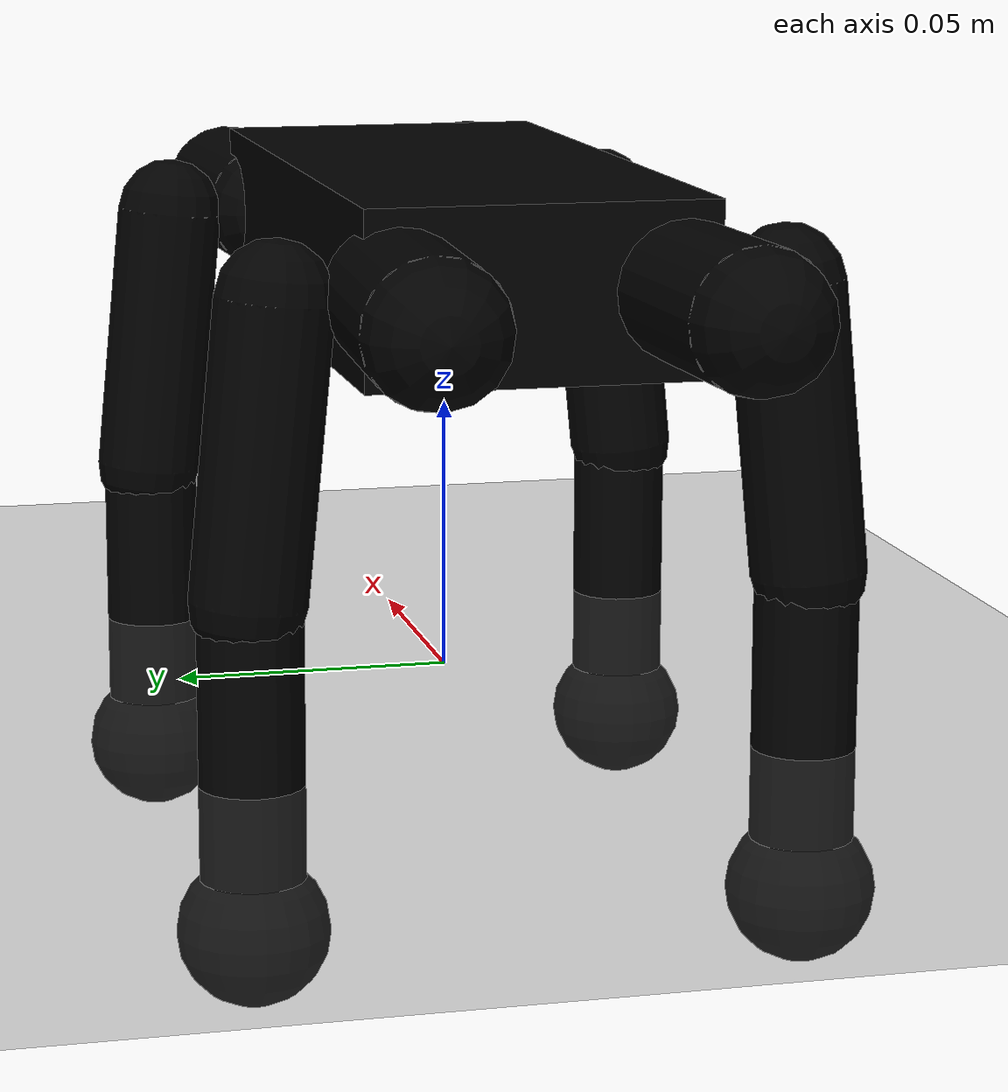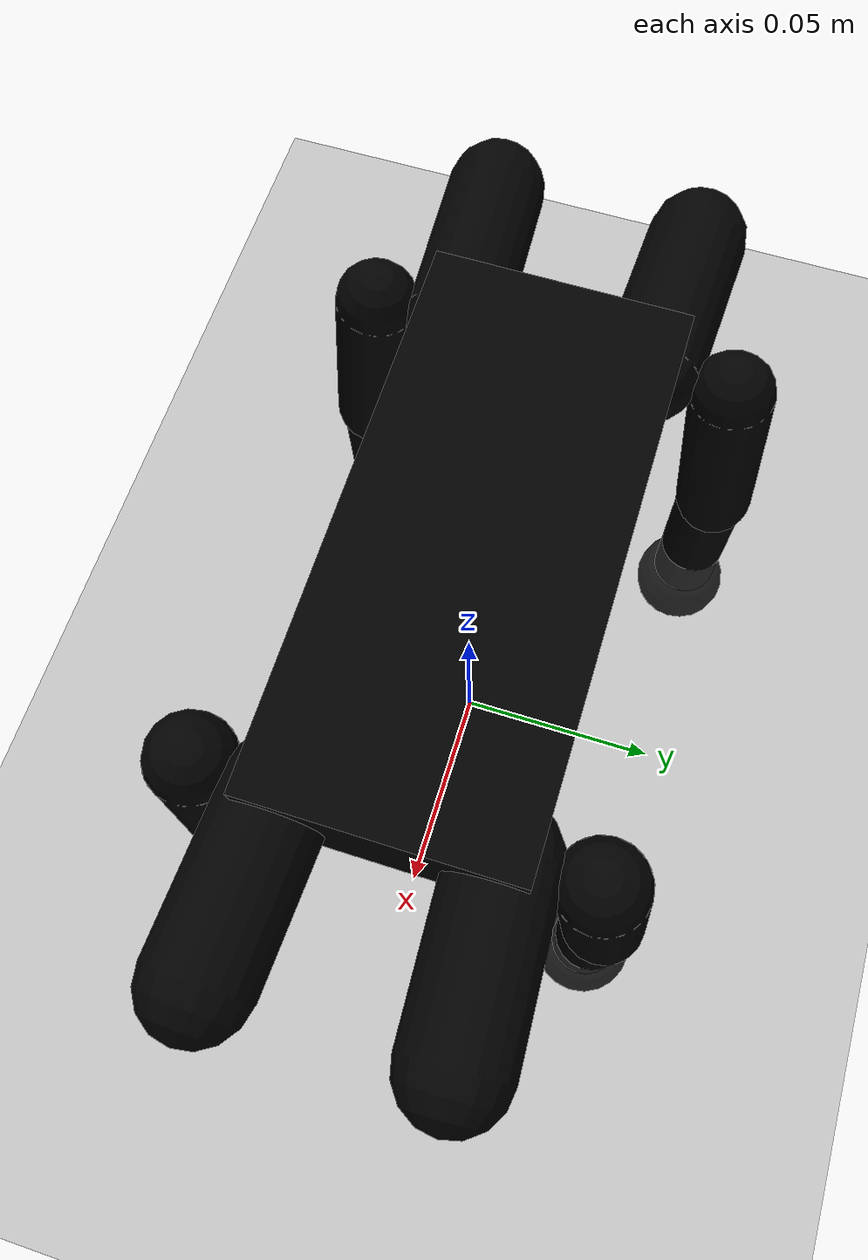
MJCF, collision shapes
<mujoco model="mini_pupper_2">

  <!-- COMPILER                                                      -->
  <compiler angle="radian" meshdir="meshes" autolimits="true" balanceinertia="true"/>

  <!-- OPTIONS                                                       -->
  <!-- MJX-compatible: pyramidal friction, Newton solver            -->
  <!-- timestep=0.004 matches Colab physics_dt                      -->
  <option timestep="0.004" iterations="2" ls_iterations="6"
          solver="Newton" cone="pyramidal" jacobian="dense"/>

  <!-- CUSTOM: MJX contact options                                   -->
  <!-- Required by pupperv3_mjx utils.set_mjx_custom_options()      -->
  <!-- Values overwritten at runtime by Colab config                 -->
  <custom>
    <numeric name="max_contact_points" data="8"/>
    <numeric name="max_geom_pairs" data="8"/>
  </custom>

  <!-- ASSETS                                                        -->
  <asset>
    <!-- Structural leg meshes -->
    <mesh name="base_link"  file="base_link.stl"/>
    <mesh name="lf1"        file="lf1.stl"/>
    <mesh name="lf2"        file="lf2.stl"/>
    <mesh name="lf3"        file="lf3.stl"/>
    <mesh name="rf1"        file="rf1.stl"/>
    <mesh name="rf2"        file="rf2.stl"/>
    <mesh name="rf3"        file="rf3.stl"/>
    <mesh name="lb1"        file="lb1.stl"/>
    <mesh name="lb2"        file="lb2.stl"/>
    <mesh name="lb3"        file="lb3.stl"/>
    <mesh name="rb1"        file="rb1.stl"/>
    <mesh name="rb2"        file="rb2.stl"/>
    <mesh name="rb3"        file="rb3.stl"/>
    <mesh name="lffoot"     file="lffoot.stl"/>
    <mesh name="rffoot"     file="rffoot.stl"/>
    <mesh name="lbfoot"     file="lbfoot.stl"/>
    <mesh name="rbfoot"     file="rbfoot.stl"/>
    <!-- Visual-only body meshes (plates/shells removed - purely decorative, -->
    <!-- cause visual artifacts due to URDF fixed-joint offset complexity)   -->

    <!-- Visual-only body meshes (panels kept for aesthetics, density=0 prevents phantom mass) -->
    <mesh name="Body_front" file="Body_front.stl"/>
    <mesh name="Board_PCB"  file="Board_PCB.stl"/>
    <mesh name="Shell_Side" file="Shell_Side.stl"/>

    <!-- Floor texture -->
    <texture name="grid" type="2d" builtin="checker"
             rgb1="0.3 0.3 0.3" rgb2="0.4 0.4 0.4" width="512" height="512"/>
    <material name="grid" texture="grid" texrepeat="4 4" reflectance="0.2"/>
  </asset>

  <!-- DEFAULTS                                                      -->
  <!-- kp=5.5, kd=0.25 matches Colab training_config defaults       -->
  <default>
    <!-- Top-level joint default - ensures damping applies everywhere -->
    <joint damping="0.25" armature="0.01" frictionloss="0.0"/>

    <!-- All joints: position-controlled servos -->
    <default class="leg_joint">
      <joint limited="true" range="-3.14 3.14"
             damping="0.25" armature="0.01" frictionloss="0.0"/>
    </default>

    <!-- Foot contact spheres -->
    <default class="foot_geom">
      <geom type="sphere" size="0.013"
            condim="6" conaffinity="1" contype="1" group="0"
            friction="1.5 0.005 0.0001"
            solref="0.02 1" solimp="0.9 0.95 0.001"/>
    </default>

    <!-- Collision capsules for leg links - invisible (alpha=0) -->
    <default class="collision_geom">
      <geom condim="3" conaffinity="1" contype="1" group="0"
            rgba="0 0 0 0"
            friction="0.8 0.005 0.0001"/>
    </default>

    <!-- Visual meshes: no collision, no mass contribution -->
    <default class="visual_geom">
      <geom conaffinity="0" contype="0" group="1" density="0"/>
    </default>

    <!-- Actuators: position control, kp=5.5 -->
    <default class="servo">
      <position kp="5.5" ctrlrange="-3.14 3.14" forcerange="-3.0 3.0"/>
    </default>
  </default>

  <!-- WORLDBODY                                                     -->
  <worldbody>

    <light name="spotlight" mode="targetbodycom" target="base_link"
           diffuse="0.8 0.8 0.8" specular="0.2 0.2 0.2"
           pos="0 -2 4" cutoff="60"/>

    <!-- Floor -->
    <geom name="floor" type="plane" size="10 10 0.1"
          material="grid" condim="3" conaffinity="1" contype="1"
          friction="1.5 0.005 0.0001"/>

    <!-- BASE / TORSO                                                  -->
    <!-- Spawn height 0.0804m: FK verified independently (hand calc +  -->
    <!-- MuJoCo mj_forward) with hip=0.994, knee=-1.767. Foot site     -->
    <!-- sits 0.06735m below base_link; + foot_radius 0.013m = 0.0804 -->
    <body name="base_link" pos="0 0 0.0804" quat="1 0 0 0">
      <freejoint name="root"/>

      <!-- Inertial from URDF: base_link + base_inertia combined mass -->

      <!-- Inertial: base_link + base_inertia + Body_front + Board_PCB + Shell_Side + lidar_link -->
      <!-- combined mass = 0.174884+0.0078552+0.0142616+0.0051929+0.108 = 0.30939 kg -->
      <!-- COM/inertia approximated at base_link's own values (dropped parts are small -->
      <!-- and roughly centered near base_link's origin; full parallel-axis correction -->
      <!-- is a refinement for later if mass distribution proves to matter further) -->
      <inertial mass="0.30939"
                pos="-0.008867 0.000396 -0.007154"
                fullinertia="0.00090939 0.00426716 0.00440707 1.27324e-7 1.05509e-9 -1.69927e-7"/>

      <site name="imu" size="0.01" pos="0 0 0"/>

      <!-- Torso collision: box approximation of body -->
      <geom name="base_collision" class="collision_geom"
            type="box" size="0.065 0.030 0.015"
            pos="-0.008 0 0" rgba="0 0 0 0"/>

      <!-- Visual meshes -->
      <!-- pos="0 0 0" because STL meshes are pre-offset in their own frame;  -->
      <!-- the URDF joint+visual offsets cancel each other out exactly.        -->
      <!-- density=0 set in visual_geom default class - no phantom mass        -->
      <geom name="base_visual"       class="visual_geom" type="mesh" mesh="base_link"  pos="0 0 0" rgba="0.15 0.15 0.15 1"/>
      <geom name="body_front_visual" class="visual_geom" type="mesh" mesh="Body_front" pos="0 0 0" rgba="1.0 0.85 0.0 1"/>
      <geom name="board_pcb_visual"  class="visual_geom" type="mesh" mesh="Board_PCB"  pos="0 0 0" rgba="0.15 0.15 0.15 1"/>
      <geom name="shell_side_visual" class="visual_geom" type="mesh" mesh="Shell_Side" pos="0 0 0" rgba="1.0 0.85 0.0 1"/>

      <!-- Tracking camera -->
      <camera name="tracking_cam" mode="trackcom"
              pos="0 -0.8 0.4" xyaxes="1 0 0 0 0.5 1"/>

      <!-- RIGHT FRONT LEG (rf)                                       -->
      <!-- Abduction joint at xyz="0.05 -0.0235 0.0" axis=x          -->
      <body name="rf1" pos="0.05 -0.0235 0.0">
        <joint name="base_rf1" class="leg_joint" axis="1 0 0" damping="0.25"/>
        <inertial mass="0.020769" pos="0.020109 -0.002332 0.006500"
                  fullinertia="2.494061e-6 3.735906e-6 3.222909e-6 7.662e-9 -0.014e-9 -33.565e-9"/>
        <geom name="rf1_visual"    class="visual_geom"    type="mesh"    mesh="rf1"  rgba="0.15 0.15 0.15 1"/>
        <geom name="rf1_collision" class="collision_geom" type="capsule" size="0.012" fromto="0 0 0  0.04 -0.002 0"/>

        <body name="rf2" pos="-4e-05 -0.0197 0.0">
          <joint name="rf1_rf2" class="leg_joint" axis="0 1 0" damping="0.25"/>
          <inertial mass="0.001906" pos="-0.003174 -0.000986 -0.017984"
                    fullinertia="0.462154e-6 0.481174e-6 26.893e-9 -3.117e-9 -17.662e-9 -79.269e-9"/>
          <geom name="rf2_visual"    class="visual_geom"    type="mesh"    mesh="rf2"  rgba="0.15 0.15 0.15 1"/>
          <geom name="rf2_collision" class="collision_geom" type="capsule" size="0.010" fromto="0 0 0  0 -0.005 -0.05"/>

          <body name="rf3" pos="0.0 -0.00475 -0.05">
            <joint name="rf2_rf3" class="leg_joint" axis="0 1 0" damping="0.25"/>
            <inertial mass="0.001144" pos="0.006211 -0.003456 -0.015014"
                      fullinertia="0.484471e-6 0.567615e-6 91.813e-9 2.101e-9 -5.008e-9 0.20057e-6"/>
            <geom name="rf3_visual"    class="visual_geom"    type="mesh"    mesh="rf3"  rgba="0.15 0.15 0.15 1"/>
            <geom name="rf3_collision" class="collision_geom" type="capsule" size="0.009" fromto="0 0 0  0 0 -0.05"/>

            <body name="rffoot" pos="0.0 0.0 -0.056">
              <geom name="rffoot_geom"   class="foot_geom"   pos="0 0 0" rgba="0 0 0 0"/>
              <geom name="rffoot_visual" class="visual_geom" type="mesh" mesh="rffoot" rgba="0.1 0.1 0.1 1"/>
              <site name="rffoot_site"   size="0.01" pos="0 0 0"/>
            </body>
          </body>
        </body>
      </body>

      <!-- LEFT FRONT LEG (lf)                                        -->
      <!-- Abduction joint at xyz="0.05 0.0235 0.0" axis=x           -->
      <body name="lf1" pos="0.05 0.0235 0.0">
        <joint name="base_lf1" class="leg_joint" axis="1 0 0" damping="0.25"/>
        <inertial mass="0.020769" pos="0.020109 0.002332 0.006500"
                  fullinertia="2.494061e-6 3.735906e-6 3.222909e-6 -7.662e-9 -0.014e-9 -33.565e-9"/>
        <geom name="lf1_visual"    class="visual_geom"    type="mesh"    mesh="lf1"  rgba="0.15 0.15 0.15 1"/>
        <geom name="lf1_collision" class="collision_geom" type="capsule" size="0.012" fromto="0 0 0  0.04 0.002 0"/>

        <body name="lf2" pos="-4e-05 0.0197 0.0">
          <joint name="lf1_lf2" class="leg_joint" axis="0 1 0" damping="0.25"/>
          <inertial mass="0.001906" pos="-0.003174 0.000986 -0.017984"
                    fullinertia="0.462154e-6 0.481174e-6 26.893e-9 3.117e-9 17.662e-9 -79.269e-9"/>
          <geom name="lf2_visual"    class="visual_geom"    type="mesh"    mesh="lf2"  rgba="0.15 0.15 0.15 1"/>
          <geom name="lf2_collision" class="collision_geom" type="capsule" size="0.010" fromto="0 0 0  0 0.005 -0.05"/>

          <body name="lf3" pos="0.0 0.00475 -0.05">
            <joint name="lf2_lf3" class="leg_joint" axis="0 1 0" damping="0.25"/>
            <inertial mass="0.001144" pos="0.006211 0.003456 -0.015014"
                      fullinertia="0.484471e-6 0.567615e-6 91.813e-9 -2.101e-9 5.008e-9 0.20057e-6"/>
            <geom name="lf3_visual"    class="visual_geom"    type="mesh"    mesh="lf3"  rgba="0.15 0.15 0.15 1"/>
            <geom name="lf3_collision" class="collision_geom" type="capsule" size="0.009" fromto="0 0 0  0 0 -0.05"/>

            <body name="lffoot" pos="0.0 0.0 -0.056">
              <geom name="lffoot_geom"   class="foot_geom"   pos="0 0 0" rgba="0 0 0 0"/>
              <geom name="lffoot_visual" class="visual_geom" type="mesh" mesh="lffoot" rgba="0.1 0.1 0.1 1"/>
              <site name="lffoot_site"   size="0.01" pos="0 0 0"/>
            </body>
          </body>
        </body>
      </body>

      <!-- RIGHT BACK LEG (rb)                                        -->
      <!-- Abduction joint at xyz="-0.066 -0.0235 0.0" axis=x        -->
      <body name="rb1" pos="-0.066 -0.0235 0.0">
        <joint name="base_rb1" class="leg_joint" axis="1 0 0" damping="0.25"/>
        <inertial mass="0.020769" pos="-0.020109 -0.002332 0.006500"
                  fullinertia="2.494061e-6 3.735906e-6 3.222909e-6 -7.662e-9 -0.014e-9 -33.565e-9"/>
        <geom name="rb1_visual"    class="visual_geom"    type="mesh"    mesh="rb1"  rgba="0.15 0.15 0.15 1"/>
        <geom name="rb1_collision" class="collision_geom" type="capsule" size="0.012" fromto="0 0 0  -0.04 -0.002 0"/>

        <body name="rb2" pos="-4e-05 -0.0197 0.0">
          <joint name="rb1_rb2" class="leg_joint" axis="0 1 0" damping="0.25"/>
          <inertial mass="0.001906" pos="-0.003174 -0.000986 -0.017984"
                    fullinertia="0.462154e-6 0.481174e-6 26.893e-9 -3.117e-9 -17.662e-9 -79.269e-9"/>
          <geom name="rb2_visual"    class="visual_geom"    type="mesh"    mesh="rb2"  rgba="0.15 0.15 0.15 1"/>
          <geom name="rb2_collision" class="collision_geom" type="capsule" size="0.010" fromto="0 0 0  0 -0.005 -0.05"/>

          <body name="rb3" pos="0.0 -0.00475 -0.05">
            <joint name="rb2_rb3" class="leg_joint" axis="0 1 0" damping="0.25"/>
            <inertial mass="0.001144" pos="0.006211 -0.003456 -0.015014"
                      fullinertia="0.484816e-6 0.567883e-6 91.777e-9 2.212e-9 -5.34e-9 0.200564e-6"/>
            <geom name="rb3_visual"    class="visual_geom"    type="mesh"    mesh="rb3"  rgba="0.15 0.15 0.15 1"/>
            <geom name="rb3_collision" class="collision_geom" type="capsule" size="0.009" fromto="0 0 0  0 0 -0.05"/>

            <body name="rbfoot" pos="0.0 0.0 -0.056">
              <geom name="rbfoot_geom"   class="foot_geom"   pos="0 0 0" rgba="0 0 0 0"/>
              <geom name="rbfoot_visual" class="visual_geom" type="mesh" mesh="rbfoot" rgba="0.1 0.1 0.1 1"/>
              <site name="rbfoot_site"   size="0.01" pos="0 0 0"/>
            </body>
          </body>
        </body>
      </body>

      <!-- LEFT BACK LEG (lb)                                         -->
      <!-- Abduction joint at xyz="-0.066 0.0235 0.0" axis=x         -->
      <body name="lb1" pos="-0.066 0.0235 0.0">
        <joint name="base_lb1" class="leg_joint" axis="1 0 0" damping="0.25"/>
        <inertial mass="0.020769" pos="-0.020109 0.002332 0.006500"
                  fullinertia="2.494061e-6 3.735906e-6 3.222909e-6 7.662e-9 -0.014e-9 -33.565e-9"/>
        <geom name="lb1_visual"    class="visual_geom"    type="mesh"    mesh="lb1"  rgba="0.15 0.15 0.15 1"/>
        <geom name="lb1_collision" class="collision_geom" type="capsule" size="0.012" fromto="0 0 0  -0.04 0.002 0"/>

        <body name="lb2" pos="-4e-05 0.0197 0.0">
          <joint name="lb1_lb2" class="leg_joint" axis="0 1 0" damping="0.25"/>
          <inertial mass="0.001906" pos="-0.003174 0.000986 -0.017984"
                    fullinertia="0.462154e-6 0.481174e-6 26.893e-9 3.117e-9 17.662e-9 -79.269e-9"/>
          <geom name="lb2_visual"    class="visual_geom"    type="mesh"    mesh="lb2"  rgba="0.15 0.15 0.15 1"/>
          <geom name="lb2_collision" class="collision_geom" type="capsule" size="0.010" fromto="0 0 0  0 0.005 -0.05"/>

          <body name="lb3" pos="0.0 0.00475 -0.05">
            <joint name="lb2_lb3" class="leg_joint" axis="0 1 0" damping="0.25"/>
            <inertial mass="0.001144" pos="0.006211 0.003456 -0.015014"
                      fullinertia="0.484471e-6 0.567615e-6 91.813e-9 -2.101e-9 5.008e-9 0.20057e-6"/>
            <geom name="lb3_visual"    class="visual_geom"    type="mesh"    mesh="lb3"  rgba="0.15 0.15 0.15 1"/>
            <geom name="lb3_collision" class="collision_geom" type="capsule" size="0.009" fromto="0 0 0  0 0 -0.05"/>

            <body name="lbfoot" pos="0.0 0.0 -0.056">
              <geom name="lbfoot_geom"   class="foot_geom"   pos="0 0 0" rgba="0 0 0 0"/>
              <geom name="lbfoot_visual" class="visual_geom" type="mesh" mesh="lbfoot" rgba="0.1 0.1 0.1 1"/>
              <site name="lbfoot_site"   size="0.01" pos="0 0 0"/>
            </body>
          </body>
        </body>
      </body>

    </body><!-- end base_link -->
  </worldbody>

  <!-- KEYFRAMES                                                     -->
  <!-- "home" = default standing pose                                -->
  <!-- qpos layout: 7 free joint (pos+quat) + 12 joint angles       -->
  <!-- Joint order: RF(abd,hip,knee) LF(abd,hip,knee)               -->
  <!--              RB(abd,hip,knee) LB(abd,hip,knee)               -->
  <!-- Values from URDF: startup_abduction=0, hip=0.994, knee=-1.767-->
  <!-- Spawn height 0.0804m verified by independent FK (hand calc + -->
  <!-- MuJoCo mj_forward, agree to 5 decimal places): foot site sits -->
  <!-- 0.06735m below base_link at these angles. foot_radius=0.013m, -->
  <!-- so base_z = 0.06735 + 0.013 = 0.0804m puts feet exactly on    -->
  <!-- floor at spawn (previous 0.057m buried feet 1.5-2.3cm into    -->
  <!-- the ground at every episode reset - confirmed via mj_forward  -->
  <!-- contact penetration check)                                    -->
  <keyframe>
    <key name="home"
         qpos="0 0 0.0804 1 0 0 0
               0.0  0.994 -1.767
               0.0  0.994 -1.767
               0.0  0.994 -1.767
               0.0  0.994 -1.767"/>
  </keyframe>

  <!-- ACTUATORS                                                     -->
  <!-- Order: RF, LF, RB, LB — each: abduction, hip, knee          -->
  <!-- Must match default_pose order in Colab                       -->
  <actuator>
    <!-- Right Front -->
    <position name="act_base_rf1" class="servo" joint="base_rf1"/>
    <position name="act_rf1_rf2"  class="servo" joint="rf1_rf2"/>
    <position name="act_rf2_rf3"  class="servo" joint="rf2_rf3"/>
    <!-- Left Front -->
    <position name="act_base_lf1" class="servo" joint="base_lf1"/>
    <position name="act_lf1_lf2"  class="servo" joint="lf1_lf2"/>
    <position name="act_lf2_lf3"  class="servo" joint="lf2_lf3"/>
    <!-- Right Back -->
    <position name="act_base_rb1" class="servo" joint="base_rb1"/>
    <position name="act_rb1_rb2"  class="servo" joint="rb1_rb2"/>
    <position name="act_rb2_rb3"  class="servo" joint="rb2_rb3"/>
    <!-- Left Back -->
    <position name="act_base_lb1" class="servo" joint="base_lb1"/>
    <position name="act_lb1_lb2"  class="servo" joint="lb1_lb2"/>
    <position name="act_lb2_lb3"  class="servo" joint="lb2_lb3"/>
  </actuator>

  <!-- SENSORS                                                       -->
  <!-- IMU at body origin                                            -->
  <sensor>
    <gyro        name="gyro"        site="imu"/>
    <accelerometer name="accelerometer" site="imu"/>
    <framequat   name="body_quat"   objtype="site" objname="imu"/>
  </sensor>

</mujoco>
